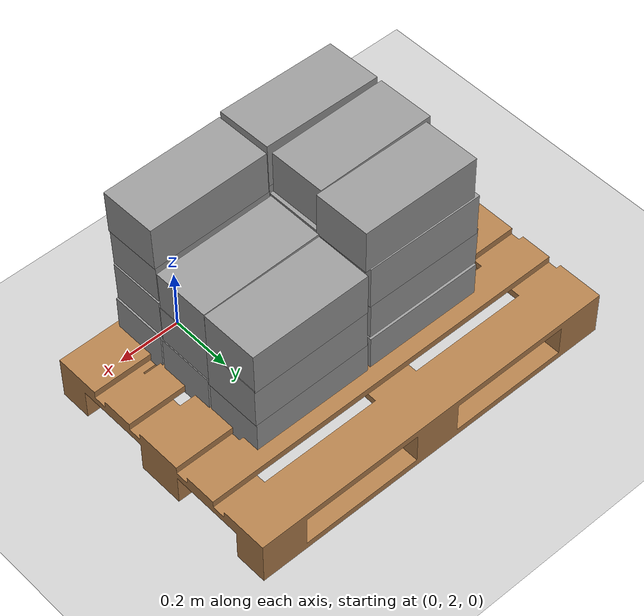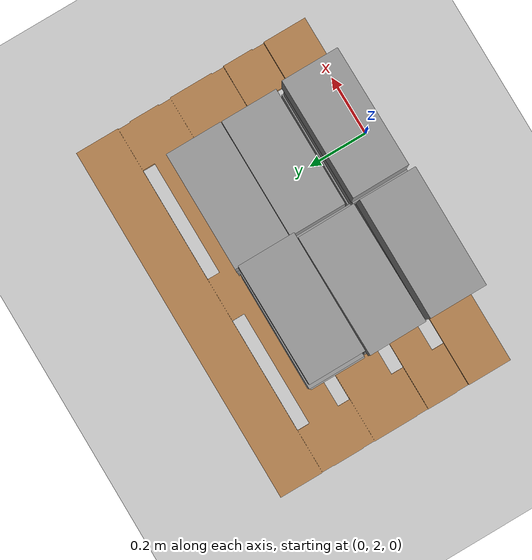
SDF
<sdf version="1.7">
 <world name="default">
  <light name="sun" type="directional">
   <pose>0 0 10 0 -0 0</pose>
   <diffuse>0.8 0.8 0.8 1</diffuse>
   <specular>0.2 0.2 0.2 1</specular>
   <attenuation>
    <range>1000</range>
    <constant>0.9</constant>
    <linear>0.01</linear>
    <quadratic>0.001</quadratic>
   </attenuation>
   <direction>-0.5 0.1 -0.9</direction>
   <spot><inner_angle>0</inner_angle><outer_angle>0</outer_angle><falloff>0</falloff></spot>
  </light>
  <model name="ground_plane">
   <static>1</static>
   <link name="link">
    <collision name="collision">
     <geometry><plane><normal>0 0 1</normal><size>100 100</size></plane></geometry>
     <surface>
      <contact><collide_bitmask>65535</collide_bitmask></contact>
      <friction><ode><mu>100</mu><mu2>50</mu2></ode></friction>
     </surface>
    </collision>
    <visual name="visual">
     <cast_shadows>0</cast_shadows>
     <geometry><plane><normal>0 0 1</normal><size>100 100</size></plane></geometry>
     <material>
      <script><uri>file://media/materials/scripts/gazebo.material</uri><name>Gazebo/Grey</name></script>
     </material>
    </visual>
   </link>
  </model>
  <gravity>0 0 -9.8</gravity>
  <magnetic_field>6e-06 2.3e-05 -4.2e-05</magnetic_field>
  <atmosphere type="adiabatic"/>
  <physics type="ode">
   <max_step_size>0.001</max_step_size>
   <real_time_factor>1</real_time_factor>
   <real_time_update_rate>1000</real_time_update_rate>
  </physics>
  <scene><ambient>0.4 0.4 0.4 1</ambient><background>0.7 0.7 0.7 1</background><shadows>1</shadows></scene>
  <spherical_coordinates>
   <surface_model>EARTH_WGS84</surface_model>
   <latitude_deg>0</latitude_deg>
   <longitude_deg>0</longitude_deg>
   <elevation>0</elevation>
   <heading_deg>0</heading_deg>
  </spherical_coordinates>
  <model name="box_38_18_14">
   <link name="link_0">
    <inertial>
     <mass>2.5</mass>
     <inertia>
      <ixx>0.0108332</ixx>
      <ixy>0</ixy>
      <ixz>0</ixz>
      <iyy>0.0341665</iyy>
      <iyz>0</iyz>
      <izz>0.0368332</izz>
     </inertia>
    </inertial>
    <visual name="visual">
     <geometry><box><size>0.38 0.18 0.14</size></box></geometry>
     <material>
      <lighting>1</lighting>
      <script><uri>file://media/materials/scripts/gazebo.material</uri><name>Gazebo/Grey</name></script>
      <shader type="pixel"><normal_map>__default__</normal_map></shader>
      <ambient>0.3 0.3 0.3 1</ambient>
      <diffuse>0.7 0.7 0.7 1</diffuse>
      <specular>0.01 0.01 0.01 1</specular>
      <emissive>0 0 0 1</emissive>
     </material>
    </visual>
    <collision name="collision">
     <geometry><box><size>0.38 0.18 0.14</size></box></geometry>
     <surface>
      <friction>
       <ode><mu>1</mu><mu2>1</mu2><fdir1>0 0 0</fdir1><slip1>0</slip1><slip2>0</slip2></ode>
       <torsional>
        <coefficient>1</coefficient>
        <patch_radius>0</patch_radius>
        <surface_radius>0</surface_radius>
        <use_patch_radius>1</use_patch_radius>
        <ode><slip>0</slip></ode>
       </torsional>
      </friction>
      <bounce><restitution_coefficient>0</restitution_coefficient><threshold>1e+06</threshold></bounce>
      <contact>
       <collide_without_contact>0</collide_without_contact>
       <collide_without_contact_bitmask>1</collide_without_contact_bitmask>
       <collide_bitmask>1</collide_bitmask>
       <ode>
        <soft_cfm>0</soft_cfm>
        <soft_erp>0.2</soft_erp>
        <kp>1e+13</kp>
        <kd>1</kd>
        <max_vel>0.01</max_vel>
        <min_depth>0.01</min_depth>
       </ode>
       <bullet>
        <split_impulse>1</split_impulse>
        <split_impulse_penetration_threshold>-0.01</split_impulse_penetration_threshold>
        <soft_cfm>0</soft_cfm>
        <soft_erp>0.2</soft_erp>
        <kp>1e+13</kp>
        <kd>1</kd>
       </bullet>
      </contact>
     </surface>
    </collision>
   </link>
   <static>0</static>
   <pose>0.003397 2.09051 0.59521 0.015717 0.010498 0.005636</pose>
  </model>
  <model name="box_38_18_14_3">
   <link name="link_0">
    <inertial>
     <mass>2.5</mass>
     <inertia>
      <ixx>0.0108332</ixx>
      <ixy>0</ixy>
      <ixz>0</ixz>
      <iyy>0.0341665</iyy>
      <iyz>0</iyz>
      <izz>0.0368332</izz>
     </inertia>
    </inertial>
    <visual name="visual">
     <geometry><box><size>0.38 0.18 0.14</size></box></geometry>
     <material>
      <lighting>1</lighting>
      <script><uri>file://media/materials/scripts/gazebo.material</uri><name>Gazebo/Grey</name></script>
      <shader type="pixel"><normal_map>__default__</normal_map></shader>
      <ambient>0.3 0.3 0.3 1</ambient>
      <diffuse>0.7 0.7 0.7 1</diffuse>
      <specular>0.01 0.01 0.01 1</specular>
      <emissive>0 0 0 1</emissive>
     </material>
    </visual>
    <collision name="collision">
     <geometry><box><size>0.38 0.18 0.14</size></box></geometry>
     <surface>
      <friction>
       <ode><mu>1</mu><mu2>1</mu2><fdir1>0 0 0</fdir1><slip1>0</slip1><slip2>0</slip2></ode>
       <torsional>
        <coefficient>1</coefficient>
        <patch_radius>0</patch_radius>
        <surface_radius>0</surface_radius>
        <use_patch_radius>1</use_patch_radius>
        <ode><slip>0</slip></ode>
       </torsional>
      </friction>
      <bounce><restitution_coefficient>0</restitution_coefficient><threshold>1e+06</threshold></bounce>
      <contact>
       <collide_without_contact>0</collide_without_contact>
       <collide_without_contact_bitmask>1</collide_without_contact_bitmask>
       <collide_bitmask>1</collide_bitmask>
       <ode>
        <soft_cfm>0</soft_cfm>
        <soft_erp>0.2</soft_erp>
        <kp>1e+13</kp>
        <kd>1</kd>
        <max_vel>0.01</max_vel>
        <min_depth>0.01</min_depth>
       </ode>
       <bullet>
        <split_impulse>1</split_impulse>
        <split_impulse_penetration_threshold>-0.01</split_impulse_penetration_threshold>
        <soft_cfm>0</soft_cfm>
        <soft_erp>0.2</soft_erp>
        <kp>1e+13</kp>
        <kd>1</kd>
       </bullet>
      </contact>
     </surface>
    </collision>
   </link>
   <static>0</static>
   <pose>-0.38781 2.07855 0.598266 0.040284 -0.014367 -0.000359</pose>
  </model>
  <model name="box_38_18_14_6">
   <link name="link_0">
    <inertial>
     <mass>2.5</mass>
     <inertia>
      <ixx>0.0108332</ixx>
      <ixy>0</ixy>
      <ixz>0</ixz>
      <iyy>0.0341665</iyy>
      <iyz>0</iyz>
      <izz>0.0368332</izz>
     </inertia>
    </inertial>
    <visual name="visual">
     <geometry><box><size>0.38 0.18 0.14</size></box></geometry>
     <material>
      <lighting>1</lighting>
      <script><uri>file://media/materials/scripts/gazebo.material</uri><name>Gazebo/Grey</name></script>
      <shader type="pixel"><normal_map>__default__</normal_map></shader>
      <ambient>0.3 0.3 0.3 1</ambient>
      <diffuse>0.7 0.7 0.7 1</diffuse>
      <specular>0.01 0.01 0.01 1</specular>
      <emissive>0 0 0 1</emissive>
     </material>
    </visual>
    <collision name="collision">
     <geometry><box><size>0.38 0.18 0.14</size></box></geometry>
     <surface>
      <friction>
       <ode><mu>1</mu><mu2>1</mu2><fdir1>0 0 0</fdir1><slip1>0</slip1><slip2>0</slip2></ode>
       <torsional>
        <coefficient>1</coefficient>
        <patch_radius>0</patch_radius>
        <surface_radius>0</surface_radius>
        <use_patch_radius>1</use_patch_radius>
        <ode><slip>0</slip></ode>
       </torsional>
      </friction>
      <bounce><restitution_coefficient>0</restitution_coefficient><threshold>1e+06</threshold></bounce>
      <contact>
       <collide_without_contact>0</collide_without_contact>
       <collide_without_contact_bitmask>1</collide_without_contact_bitmask>
       <collide_bitmask>1</collide_bitmask>
       <ode>
        <soft_cfm>0</soft_cfm>
        <soft_erp>0.2</soft_erp>
        <kp>1e+13</kp>
        <kd>1</kd>
        <max_vel>0.01</max_vel>
        <min_depth>0.01</min_depth>
       </ode>
       <bullet>
        <split_impulse>1</split_impulse>
        <split_impulse_penetration_threshold>-0.01</split_impulse_penetration_threshold>
        <soft_cfm>0</soft_cfm>
        <soft_erp>0.2</soft_erp>
        <kp>1e+13</kp>
        <kd>1</kd>
       </bullet>
      </contact>
     </surface>
    </collision>
   </link>
   <static>0</static>
   <pose>-0.390414 2.27253 0.597238 0.009371 0.000718 0.010115</pose>
  </model>
  <model name="box_38_18_14_7">
   <link name="link_0">
    <inertial>
     <mass>2.5</mass>
     <inertia>
      <ixx>0.0108332</ixx>
      <ixy>0</ixy>
      <ixz>0</ixz>
      <iyy>0.0341665</iyy>
      <iyz>0</iyz>
      <izz>0.0368332</izz>
     </inertia>
    </inertial>
    <visual name="visual">
     <geometry><box><size>0.38 0.18 0.14</size></box></geometry>
     <material>
      <lighting>1</lighting>
      <script><uri>file://media/materials/scripts/gazebo.material</uri><name>Gazebo/Grey</name></script>
      <shader type="pixel"><normal_map>__default__</normal_map></shader>
      <ambient>0.3 0.3 0.3 1</ambient>
      <diffuse>0.7 0.7 0.7 1</diffuse>
      <specular>0.01 0.01 0.01 1</specular>
      <emissive>0 0 0 1</emissive>
     </material>
    </visual>
    <collision name="collision">
     <geometry><box><size>0.38 0.18 0.14</size></box></geometry>
     <surface>
      <friction>
       <ode><mu>1</mu><mu2>1</mu2><fdir1>0 0 0</fdir1><slip1>0</slip1><slip2>0</slip2></ode>
       <torsional>
        <coefficient>1</coefficient>
        <patch_radius>0</patch_radius>
        <surface_radius>0</surface_radius>
        <use_patch_radius>1</use_patch_radius>
        <ode><slip>0</slip></ode>
       </torsional>
      </friction>
      <bounce><restitution_coefficient>0</restitution_coefficient><threshold>1e+06</threshold></bounce>
      <contact>
       <collide_without_contact>0</collide_without_contact>
       <collide_without_contact_bitmask>1</collide_without_contact_bitmask>
       <collide_bitmask>1</collide_bitmask>
       <ode>
        <soft_cfm>0</soft_cfm>
        <soft_erp>0.2</soft_erp>
        <kp>1e+13</kp>
        <kd>1</kd>
        <max_vel>0.01</max_vel>
        <min_depth>0.01</min_depth>
       </ode>
       <bullet>
        <split_impulse>1</split_impulse>
        <split_impulse_penetration_threshold>-0.01</split_impulse_penetration_threshold>
        <soft_cfm>0</soft_cfm>
        <soft_erp>0.2</soft_erp>
        <kp>1e+13</kp>
        <kd>1</kd>
       </bullet>
      </contact>
     </surface>
    </collision>
   </link>
   <static>0</static>
   <pose>-0.373115 2.45607 0.596671 0.013444 -0.012619 0.00408</pose>
  </model>
  <model name="box_38_18_14_8">
   <link name="link_0">
    <inertial>
     <mass>2.5</mass>
     <inertia>
      <ixx>0.0108332</ixx>
      <ixy>0</ixy>
      <ixz>0</ixz>
      <iyy>0.0341665</iyy>
      <iyz>0</iyz>
      <izz>0.0368332</izz>
     </inertia>
    </inertial>
    <visual name="visual">
     <geometry><box><size>0.38 0.18 0.14</size></box></geometry>
     <material>
      <lighting>1</lighting>
      <script><uri>file://media/materials/scripts/gazebo.material</uri><name>Gazebo/Grey</name></script>
      <shader type="pixel"><normal_map>__default__</normal_map></shader>
      <ambient>0.3 0.3 0.3 1</ambient>
      <diffuse>0.7 0.7 0.7 1</diffuse>
      <specular>0.01 0.01 0.01 1</specular>
      <emissive>0 0 0 1</emissive>
     </material>
    </visual>
    <collision name="collision">
     <geometry><box><size>0.38 0.18 0.14</size></box></geometry>
     <surface>
      <friction>
       <ode><mu>1</mu><mu2>1</mu2><fdir1>0 0 0</fdir1><slip1>0</slip1><slip2>0</slip2></ode>
       <torsional>
        <coefficient>1</coefficient>
        <patch_radius>0</patch_radius>
        <surface_radius>0</surface_radius>
        <use_patch_radius>1</use_patch_radius>
        <ode><slip>0</slip></ode>
       </torsional>
      </friction>
      <bounce><restitution_coefficient>0</restitution_coefficient><threshold>1e+06</threshold></bounce>
      <contact>
       <collide_without_contact>0</collide_without_contact>
       <collide_without_contact_bitmask>1</collide_without_contact_bitmask>
       <collide_bitmask>1</collide_bitmask>
       <ode>
        <soft_cfm>0</soft_cfm>
        <soft_erp>0.2</soft_erp>
        <kp>1e+13</kp>
        <kd>1</kd>
        <max_vel>0.01</max_vel>
        <min_depth>0.01</min_depth>
       </ode>
       <bullet>
        <split_impulse>1</split_impulse>
        <split_impulse_penetration_threshold>-0.01</split_impulse_penetration_threshold>
        <soft_cfm>0</soft_cfm>
        <soft_erp>0.2</soft_erp>
        <kp>1e+13</kp>
        <kd>1</kd>
       </bullet>
      </contact>
     </surface>
    </collision>
   </link>
   <static>0</static>
   <pose>-0.385222 2.08439 0.458942 0.043107 -0.014163 -3.1e-05</pose>
  </model>
  <model name="box_38_18_14_9">
   <link name="link_0">
    <inertial>
     <mass>2.5</mass>
     <inertia>
      <ixx>0.0108332</ixx>
      <ixy>0</ixy>
      <ixz>0</ixz>
      <iyy>0.0341665</iyy>
      <iyz>0</iyz>
      <izz>0.0368332</izz>
     </inertia>
    </inertial>
    <visual name="visual">
     <geometry><box><size>0.38 0.18 0.14</size></box></geometry>
     <material>
      <lighting>1</lighting>
      <script><uri>file://media/materials/scripts/gazebo.material</uri><name>Gazebo/Grey</name></script>
      <shader type="pixel"><normal_map>__default__</normal_map></shader>
      <ambient>0.3 0.3 0.3 1</ambient>
      <diffuse>0.7 0.7 0.7 1</diffuse>
      <specular>0.01 0.01 0.01 1</specular>
      <emissive>0 0 0 1</emissive>
     </material>
    </visual>
    <collision name="collision">
     <geometry><box><size>0.38 0.18 0.14</size></box></geometry>
     <surface>
      <friction>
       <ode><mu>1</mu><mu2>1</mu2><fdir1>0 0 0</fdir1><slip1>0</slip1><slip2>0</slip2></ode>
       <torsional>
        <coefficient>1</coefficient>
        <patch_radius>0</patch_radius>
        <surface_radius>0</surface_radius>
        <use_patch_radius>1</use_patch_radius>
        <ode><slip>0</slip></ode>
       </torsional>
      </friction>
      <bounce><restitution_coefficient>0</restitution_coefficient><threshold>1e+06</threshold></bounce>
      <contact>
       <collide_without_contact>0</collide_without_contact>
       <collide_without_contact_bitmask>1</collide_without_contact_bitmask>
       <collide_bitmask>1</collide_bitmask>
       <ode>
        <soft_cfm>0</soft_cfm>
        <soft_erp>0.2</soft_erp>
        <kp>1e+13</kp>
        <kd>1</kd>
        <max_vel>0.01</max_vel>
        <min_depth>0.01</min_depth>
       </ode>
       <bullet>
        <split_impulse>1</split_impulse>
        <split_impulse_penetration_threshold>-0.01</split_impulse_penetration_threshold>
        <soft_cfm>0</soft_cfm>
        <soft_erp>0.2</soft_erp>
        <kp>1e+13</kp>
        <kd>1</kd>
       </bullet>
      </contact>
     </surface>
    </collision>
   </link>
   <static>0</static>
   <pose>-0.384458 2.08962 0.327015 0.024244 -0.013403 -0.001181</pose>
  </model>
  <model name="box_38_18_14_10">
   <link name="link_0">
    <inertial>
     <mass>2.5</mass>
     <inertia>
      <ixx>0.0108332</ixx>
      <ixy>0</ixy>
      <ixz>0</ixz>
      <iyy>0.0341665</iyy>
      <iyz>0</iyz>
      <izz>0.0368332</izz>
     </inertia>
    </inertial>
    <visual name="visual">
     <geometry><box><size>0.38 0.18 0.14</size></box></geometry>
     <material>
      <lighting>1</lighting>
      <script><uri>file://media/materials/scripts/gazebo.material</uri><name>Gazebo/Grey</name></script>
      <shader type="pixel"><normal_map>__default__</normal_map></shader>
      <ambient>0.3 0.3 0.3 1</ambient>
      <diffuse>0.7 0.7 0.7 1</diffuse>
      <specular>0.01 0.01 0.01 1</specular>
      <emissive>0 0 0 1</emissive>
     </material>
    </visual>
    <collision name="collision">
     <geometry><box><size>0.38 0.18 0.14</size></box></geometry>
     <surface>
      <friction>
       <ode><mu>1</mu><mu2>1</mu2><fdir1>0 0 0</fdir1><slip1>0</slip1><slip2>0</slip2></ode>
       <torsional>
        <coefficient>1</coefficient>
        <patch_radius>0</patch_radius>
        <surface_radius>0</surface_radius>
        <use_patch_radius>1</use_patch_radius>
        <ode><slip>0</slip></ode>
       </torsional>
      </friction>
      <bounce><restitution_coefficient>0</restitution_coefficient><threshold>1e+06</threshold></bounce>
      <contact>
       <collide_without_contact>0</collide_without_contact>
       <collide_without_contact_bitmask>1</collide_without_contact_bitmask>
       <collide_bitmask>1</collide_bitmask>
       <ode>
        <soft_cfm>0</soft_cfm>
        <soft_erp>0.2</soft_erp>
        <kp>1e+13</kp>
        <kd>1</kd>
        <max_vel>0.01</max_vel>
        <min_depth>0.01</min_depth>
       </ode>
       <bullet>
        <split_impulse>1</split_impulse>
        <split_impulse_penetration_threshold>-0.01</split_impulse_penetration_threshold>
        <soft_cfm>0</soft_cfm>
        <soft_erp>0.2</soft_erp>
        <kp>1e+13</kp>
        <kd>1</kd>
       </bullet>
      </contact>
     </surface>
    </collision>
   </link>
   <static>0</static>
   <pose>-0.383954 2.09001 0.191987 -3.1e-05 4.7e-05 -0.001489</pose>
  </model>
  <model name="box_38_18_14_11">
   <link name="link_0">
    <inertial>
     <mass>2.5</mass>
     <inertia>
      <ixx>0.0108332</ixx>
      <ixy>0</ixy>
      <ixz>0</ixz>
      <iyy>0.0341665</iyy>
      <iyz>0</iyz>
      <izz>0.0368332</izz>
     </inertia>
    </inertial>
    <visual name="visual">
     <geometry><box><size>0.38 0.18 0.14</size></box></geometry>
     <material>
      <lighting>1</lighting>
      <script><uri>file://media/materials/scripts/gazebo.material</uri><name>Gazebo/Grey</name></script>
      <shader type="pixel"><normal_map>__default__</normal_map></shader>
      <ambient>0.3 0.3 0.3 1</ambient>
      <diffuse>0.7 0.7 0.7 1</diffuse>
      <specular>0.01 0.01 0.01 1</specular>
      <emissive>0 0 0 1</emissive>
     </material>
    </visual>
    <collision name="collision">
     <geometry><box><size>0.38 0.18 0.14</size></box></geometry>
     <surface>
      <friction>
       <ode><mu>1</mu><mu2>1</mu2><fdir1>0 0 0</fdir1><slip1>0</slip1><slip2>0</slip2></ode>
       <torsional>
        <coefficient>1</coefficient>
        <patch_radius>0</patch_radius>
        <surface_radius>0</surface_radius>
        <use_patch_radius>1</use_patch_radius>
        <ode><slip>0</slip></ode>
       </torsional>
      </friction>
      <bounce><restitution_coefficient>0</restitution_coefficient><threshold>1e+06</threshold></bounce>
      <contact>
       <collide_without_contact>0</collide_without_contact>
       <collide_without_contact_bitmask>1</collide_without_contact_bitmask>
       <collide_bitmask>1</collide_bitmask>
       <ode>
        <soft_cfm>0</soft_cfm>
        <soft_erp>0.2</soft_erp>
        <kp>1e+13</kp>
        <kd>1</kd>
        <max_vel>0.01</max_vel>
        <min_depth>0.01</min_depth>
       </ode>
       <bullet>
        <split_impulse>1</split_impulse>
        <split_impulse_penetration_threshold>-0.01</split_impulse_penetration_threshold>
        <soft_cfm>0</soft_cfm>
        <soft_erp>0.2</soft_erp>
        <kp>1e+13</kp>
        <kd>1</kd>
       </bullet>
      </contact>
     </surface>
    </collision>
   </link>
   <static>0</static>
   <pose>-0.378293 2.27419 0.457938 0.004756 0.000177 0.003232</pose>
  </model>
  <model name="box_38_18_14_12">
   <link name="link_0">
    <inertial>
     <mass>2.5</mass>
     <inertia>
      <ixx>0.0108332</ixx>
      <ixy>0</ixy>
      <ixz>0</ixz>
      <iyy>0.0341665</iyy>
      <iyz>0</iyz>
      <izz>0.0368332</izz>
     </inertia>
    </inertial>
    <visual name="visual">
     <geometry><box><size>0.38 0.18 0.14</size></box></geometry>
     <material>
      <lighting>1</lighting>
      <script><uri>file://media/materials/scripts/gazebo.material</uri><name>Gazebo/Grey</name></script>
      <shader type="pixel"><normal_map>__default__</normal_map></shader>
      <ambient>0.3 0.3 0.3 1</ambient>
      <diffuse>0.7 0.7 0.7 1</diffuse>
      <specular>0.01 0.01 0.01 1</specular>
      <emissive>0 0 0 1</emissive>
     </material>
    </visual>
    <collision name="collision">
     <geometry><box><size>0.38 0.18 0.14</size></box></geometry>
     <surface>
      <friction>
       <ode><mu>1</mu><mu2>1</mu2><fdir1>0 0 0</fdir1><slip1>0</slip1><slip2>0</slip2></ode>
       <torsional>
        <coefficient>1</coefficient>
        <patch_radius>0</patch_radius>
        <surface_radius>0</surface_radius>
        <use_patch_radius>1</use_patch_radius>
        <ode><slip>0</slip></ode>
       </torsional>
      </friction>
      <bounce><restitution_coefficient>0</restitution_coefficient><threshold>1e+06</threshold></bounce>
      <contact>
       <collide_without_contact>0</collide_without_contact>
       <collide_without_contact_bitmask>1</collide_without_contact_bitmask>
       <collide_bitmask>1</collide_bitmask>
       <ode>
        <soft_cfm>0</soft_cfm>
        <soft_erp>0.2</soft_erp>
        <kp>1e+13</kp>
        <kd>1</kd>
        <max_vel>0.01</max_vel>
        <min_depth>0.01</min_depth>
       </ode>
       <bullet>
        <split_impulse>1</split_impulse>
        <split_impulse_penetration_threshold>-0.01</split_impulse_penetration_threshold>
        <soft_cfm>0</soft_cfm>
        <soft_erp>0.2</soft_erp>
        <kp>1e+13</kp>
        <kd>1</kd>
       </bullet>
      </contact>
     </surface>
    </collision>
   </link>
   <static>0</static>
   <pose>-0.384684 2.27334 0.324929 -5.8e-05 0.013128 0.004437</pose>
  </model>
  <model name="box_38_18_14_13">
   <link name="link_0">
    <inertial>
     <mass>2.5</mass>
     <inertia>
      <ixx>0.0108332</ixx>
      <ixy>0</ixy>
      <ixz>0</ixz>
      <iyy>0.0341665</iyy>
      <iyz>0</iyz>
      <izz>0.0368332</izz>
     </inertia>
    </inertial>
    <visual name="visual">
     <geometry><box><size>0.38 0.18 0.14</size></box></geometry>
     <material>
      <lighting>1</lighting>
      <script><uri>file://media/materials/scripts/gazebo.material</uri><name>Gazebo/Grey</name></script>
      <shader type="pixel"><normal_map>__default__</normal_map></shader>
      <ambient>0.3 0.3 0.3 1</ambient>
      <diffuse>0.7 0.7 0.7 1</diffuse>
      <specular>0.01 0.01 0.01 1</specular>
      <emissive>0 0 0 1</emissive>
     </material>
    </visual>
    <collision name="collision">
     <geometry><box><size>0.38 0.18 0.14</size></box></geometry>
     <surface>
      <friction>
       <ode><mu>1</mu><mu2>1</mu2><fdir1>0 0 0</fdir1><slip1>0</slip1><slip2>0</slip2></ode>
       <torsional>
        <coefficient>1</coefficient>
        <patch_radius>0</patch_radius>
        <surface_radius>0</surface_radius>
        <use_patch_radius>1</use_patch_radius>
        <ode><slip>0</slip></ode>
       </torsional>
      </friction>
      <bounce><restitution_coefficient>0</restitution_coefficient><threshold>1e+06</threshold></bounce>
      <contact>
       <collide_without_contact>0</collide_without_contact>
       <collide_without_contact_bitmask>1</collide_without_contact_bitmask>
       <collide_bitmask>1</collide_bitmask>
       <ode>
        <soft_cfm>0</soft_cfm>
        <soft_erp>0.2</soft_erp>
        <kp>1e+13</kp>
        <kd>1</kd>
        <max_vel>0.01</max_vel>
        <min_depth>0.01</min_depth>
       </ode>
       <bullet>
        <split_impulse>1</split_impulse>
        <split_impulse_penetration_threshold>-0.01</split_impulse_penetration_threshold>
        <soft_cfm>0</soft_cfm>
        <soft_erp>0.2</soft_erp>
        <kp>1e+13</kp>
        <kd>1</kd>
       </bullet>
      </contact>
     </surface>
    </collision>
   </link>
   <static>0</static>
   <pose>-0.388235 2.27526 0.191987 2e-06 3e-05 -0.000238</pose>
  </model>
  <model name="box_38_18_14_14">
   <link name="link_0">
    <inertial>
     <mass>2.5</mass>
     <inertia>
      <ixx>0.0108332</ixx>
      <ixy>0</ixy>
      <ixz>0</ixz>
      <iyy>0.0341665</iyy>
      <iyz>0</iyz>
      <izz>0.0368332</izz>
     </inertia>
    </inertial>
    <visual name="visual">
     <geometry><box><size>0.38 0.18 0.14</size></box></geometry>
     <material>
      <lighting>1</lighting>
      <script><uri>file://media/materials/scripts/gazebo.material</uri><name>Gazebo/Grey</name></script>
      <shader type="pixel"><normal_map>__default__</normal_map></shader>
      <ambient>0.3 0.3 0.3 1</ambient>
      <diffuse>0.7 0.7 0.7 1</diffuse>
      <specular>0.01 0.01 0.01 1</specular>
      <emissive>0 0 0 1</emissive>
     </material>
    </visual>
    <collision name="collision">
     <geometry><box><size>0.38 0.18 0.14</size></box></geometry>
     <surface>
      <friction>
       <ode><mu>1</mu><mu2>1</mu2><fdir1>0 0 0</fdir1><slip1>0</slip1><slip2>0</slip2></ode>
       <torsional>
        <coefficient>1</coefficient>
        <patch_radius>0</patch_radius>
        <surface_radius>0</surface_radius>
        <use_patch_radius>1</use_patch_radius>
        <ode><slip>0</slip></ode>
       </torsional>
      </friction>
      <bounce><restitution_coefficient>0</restitution_coefficient><threshold>1e+06</threshold></bounce>
      <contact>
       <collide_without_contact>0</collide_without_contact>
       <collide_without_contact_bitmask>1</collide_without_contact_bitmask>
       <collide_bitmask>1</collide_bitmask>
       <ode>
        <soft_cfm>0</soft_cfm>
        <soft_erp>0.2</soft_erp>
        <kp>1e+13</kp>
        <kd>1</kd>
        <max_vel>0.01</max_vel>
        <min_depth>0.01</min_depth>
       </ode>
       <bullet>
        <split_impulse>1</split_impulse>
        <split_impulse_penetration_threshold>-0.01</split_impulse_penetration_threshold>
        <soft_cfm>0</soft_cfm>
        <soft_erp>0.2</soft_erp>
        <kp>1e+13</kp>
        <kd>1</kd>
       </bullet>
      </contact>
     </surface>
    </collision>
   </link>
   <static>0</static>
   <pose>-0.38622 2.46181 0.457523 0.011243 -0.015566 0.001099</pose>
  </model>
  <model name="box_38_18_14_15">
   <link name="link_0">
    <inertial>
     <mass>2.5</mass>
     <inertia>
      <ixx>0.0108332</ixx>
      <ixy>0</ixy>
      <ixz>0</ixz>
      <iyy>0.0341665</iyy>
      <iyz>0</iyz>
      <izz>0.0368332</izz>
     </inertia>
    </inertial>
    <visual name="visual">
     <geometry><box><size>0.38 0.18 0.14</size></box></geometry>
     <material>
      <lighting>1</lighting>
      <script><uri>file://media/materials/scripts/gazebo.material</uri><name>Gazebo/Grey</name></script>
      <shader type="pixel"><normal_map>__default__</normal_map></shader>
      <ambient>0.3 0.3 0.3 1</ambient>
      <diffuse>0.7 0.7 0.7 1</diffuse>
      <specular>0.01 0.01 0.01 1</specular>
      <emissive>0 0 0 1</emissive>
     </material>
    </visual>
    <collision name="collision">
     <geometry><box><size>0.38 0.18 0.14</size></box></geometry>
     <surface>
      <friction>
       <ode><mu>1</mu><mu2>1</mu2><fdir1>0 0 0</fdir1><slip1>0</slip1><slip2>0</slip2></ode>
       <torsional>
        <coefficient>1</coefficient>
        <patch_radius>0</patch_radius>
        <surface_radius>0</surface_radius>
        <use_patch_radius>1</use_patch_radius>
        <ode><slip>0</slip></ode>
       </torsional>
      </friction>
      <bounce><restitution_coefficient>0</restitution_coefficient><threshold>1e+06</threshold></bounce>
      <contact>
       <collide_without_contact>0</collide_without_contact>
       <collide_without_contact_bitmask>1</collide_without_contact_bitmask>
       <collide_bitmask>1</collide_bitmask>
       <ode>
        <soft_cfm>0</soft_cfm>
        <soft_erp>0.2</soft_erp>
        <kp>1e+13</kp>
        <kd>1</kd>
        <max_vel>0.01</max_vel>
        <min_depth>0.01</min_depth>
       </ode>
       <bullet>
        <split_impulse>1</split_impulse>
        <split_impulse_penetration_threshold>-0.01</split_impulse_penetration_threshold>
        <soft_cfm>0</soft_cfm>
        <soft_erp>0.2</soft_erp>
        <kp>1e+13</kp>
        <kd>1</kd>
       </bullet>
      </contact>
     </surface>
    </collision>
   </link>
   <static>0</static>
   <pose>-0.393031 2.45744 0.324685 0.000111 -0.012172 0.000107</pose>
  </model>
  <model name="box_38_18_14_16">
   <link name="link_0">
    <inertial>
     <mass>2.5</mass>
     <inertia>
      <ixx>0.0108332</ixx>
      <ixy>0</ixy>
      <ixz>0</ixz>
      <iyy>0.0341665</iyy>
      <iyz>0</iyz>
      <izz>0.0368332</izz>
     </inertia>
    </inertial>
    <visual name="visual">
     <geometry><box><size>0.38 0.18 0.14</size></box></geometry>
     <material>
      <lighting>1</lighting>
      <script><uri>file://media/materials/scripts/gazebo.material</uri><name>Gazebo/Grey</name></script>
      <shader type="pixel"><normal_map>__default__</normal_map></shader>
      <ambient>0.3 0.3 0.3 1</ambient>
      <diffuse>0.7 0.7 0.7 1</diffuse>
      <specular>0.01 0.01 0.01 1</specular>
      <emissive>0 0 0 1</emissive>
     </material>
    </visual>
    <collision name="collision">
     <geometry><box><size>0.38 0.18 0.14</size></box></geometry>
     <surface>
      <friction>
       <ode><mu>1</mu><mu2>1</mu2><fdir1>0 0 0</fdir1><slip1>0</slip1><slip2>0</slip2></ode>
       <torsional>
        <coefficient>1</coefficient>
        <patch_radius>0</patch_radius>
        <surface_radius>0</surface_radius>
        <use_patch_radius>1</use_patch_radius>
        <ode><slip>0</slip></ode>
       </torsional>
      </friction>
      <bounce><restitution_coefficient>0</restitution_coefficient><threshold>1e+06</threshold></bounce>
      <contact>
       <collide_without_contact>0</collide_without_contact>
       <collide_without_contact_bitmask>1</collide_without_contact_bitmask>
       <collide_bitmask>1</collide_bitmask>
       <ode>
        <soft_cfm>0</soft_cfm>
        <soft_erp>0.2</soft_erp>
        <kp>1e+13</kp>
        <kd>1</kd>
        <max_vel>0.01</max_vel>
        <min_depth>0.01</min_depth>
       </ode>
       <bullet>
        <split_impulse>1</split_impulse>
        <split_impulse_penetration_threshold>-0.01</split_impulse_penetration_threshold>
        <soft_cfm>0</soft_cfm>
        <soft_erp>0.2</soft_erp>
        <kp>1e+13</kp>
        <kd>1</kd>
       </bullet>
      </contact>
     </surface>
    </collision>
   </link>
   <static>0</static>
   <pose>-0.388319 2.4646 0.191992 2e-06 2.1e-05 -0.001019</pose>
  </model>
  <model name="box_38_18_14_0">
   <link name="link_0">
    <inertial>
     <mass>2.5</mass>
     <inertia>
      <ixx>0.0108332</ixx>
      <ixy>0</ixy>
      <ixz>0</ixz>
      <iyy>0.0341665</iyy>
      <iyz>0</iyz>
      <izz>0.0368332</izz>
     </inertia>
    </inertial>
    <visual name="visual">
     <geometry><box><size>0.38 0.18 0.14</size></box></geometry>
     <material>
      <lighting>1</lighting>
      <script><uri>file://media/materials/scripts/gazebo.material</uri><name>Gazebo/Grey</name></script>
      <shader type="pixel"><normal_map>__default__</normal_map></shader>
      <ambient>0.3 0.3 0.3 1</ambient>
      <diffuse>0.7 0.7 0.7 1</diffuse>
      <specular>0.01 0.01 0.01 1</specular>
      <emissive>0 0 0 1</emissive>
     </material>
    </visual>
    <collision name="collision">
     <geometry><box><size>0.38 0.18 0.14</size></box></geometry>
     <surface>
      <friction>
       <ode><mu>1</mu><mu2>1</mu2><fdir1>0 0 0</fdir1><slip1>0</slip1><slip2>0</slip2></ode>
       <torsional>
        <coefficient>1</coefficient>
        <patch_radius>0</patch_radius>
        <surface_radius>0</surface_radius>
        <use_patch_radius>1</use_patch_radius>
        <ode><slip>0</slip></ode>
       </torsional>
      </friction>
      <bounce><restitution_coefficient>0</restitution_coefficient><threshold>1e+06</threshold></bounce>
      <contact>
       <collide_without_contact>0</collide_without_contact>
       <collide_without_contact_bitmask>1</collide_without_contact_bitmask>
       <collide_bitmask>1</collide_bitmask>
       <ode>
        <soft_cfm>0</soft_cfm>
        <soft_erp>0.2</soft_erp>
        <kp>1e+13</kp>
        <kd>1</kd>
        <max_vel>0.01</max_vel>
        <min_depth>0.01</min_depth>
       </ode>
       <bullet>
        <split_impulse>1</split_impulse>
        <split_impulse_penetration_threshold>-0.01</split_impulse_penetration_threshold>
        <soft_cfm>0</soft_cfm>
        <soft_erp>0.2</soft_erp>
        <kp>1e+13</kp>
        <kd>1</kd>
       </bullet>
      </contact>
     </surface>
    </collision>
   </link>
   <static>0</static>
   <pose>0.008015 2.46853 0.454832 0.001741 0.00824 0.001916</pose>
  </model>
  <model name="box_38_18_14_1">
   <link name="link_0">
    <inertial>
     <mass>2.5</mass>
     <inertia>
      <ixx>0.0108332</ixx>
      <ixy>0</ixy>
      <ixz>0</ixz>
      <iyy>0.0341665</iyy>
      <iyz>0</iyz>
      <izz>0.0368332</izz>
     </inertia>
    </inertial>
    <visual name="visual">
     <geometry><box><size>0.38 0.18 0.14</size></box></geometry>
     <material>
      <lighting>1</lighting>
      <script><uri>file://media/materials/scripts/gazebo.material</uri><name>Gazebo/Grey</name></script>
      <shader type="pixel"><normal_map>__default__</normal_map></shader>
      <ambient>0.3 0.3 0.3 1</ambient>
      <diffuse>0.7 0.7 0.7 1</diffuse>
      <specular>0.01 0.01 0.01 1</specular>
      <emissive>0 0 0 1</emissive>
     </material>
    </visual>
    <collision name="collision">
     <geometry><box><size>0.38 0.18 0.14</size></box></geometry>
     <surface>
      <friction>
       <ode><mu>1</mu><mu2>1</mu2><fdir1>0 0 0</fdir1><slip1>0</slip1><slip2>0</slip2></ode>
       <torsional>
        <coefficient>1</coefficient>
        <patch_radius>0</patch_radius>
        <surface_radius>0</surface_radius>
        <use_patch_radius>1</use_patch_radius>
        <ode><slip>0</slip></ode>
       </torsional>
      </friction>
      <bounce><restitution_coefficient>0</restitution_coefficient><threshold>1e+06</threshold></bounce>
      <contact>
       <collide_without_contact>0</collide_without_contact>
       <collide_without_contact_bitmask>1</collide_without_contact_bitmask>
       <collide_bitmask>1</collide_bitmask>
       <ode>
        <soft_cfm>0</soft_cfm>
        <soft_erp>0.2</soft_erp>
        <kp>1e+13</kp>
        <kd>1</kd>
        <max_vel>0.01</max_vel>
        <min_depth>0.01</min_depth>
       </ode>
       <bullet>
        <split_impulse>1</split_impulse>
        <split_impulse_penetration_threshold>-0.01</split_impulse_penetration_threshold>
        <soft_cfm>0</soft_cfm>
        <soft_erp>0.2</soft_erp>
        <kp>1e+13</kp>
        <kd>1</kd>
       </bullet>
      </contact>
     </surface>
    </collision>
   </link>
   <static>0</static>
   <pose>0.008183 2.46822 0.32375 0.002192 0.008348 0.001119</pose>
  </model>
  <model name="box_38_18_14_2">
   <link name="link_0">
    <inertial>
     <mass>2.5</mass>
     <inertia>
      <ixx>0.0108332</ixx>
      <ixy>0</ixy>
      <ixz>0</ixz>
      <iyy>0.0341665</iyy>
      <iyz>0</iyz>
      <izz>0.0368332</izz>
     </inertia>
    </inertial>
    <visual name="visual">
     <geometry><box><size>0.38 0.18 0.14</size></box></geometry>
     <material>
      <lighting>1</lighting>
      <script><uri>file://media/materials/scripts/gazebo.material</uri><name>Gazebo/Grey</name></script>
      <shader type="pixel"><normal_map>__default__</normal_map></shader>
      <ambient>0.3 0.3 0.3 1</ambient>
      <diffuse>0.7 0.7 0.7 1</diffuse>
      <specular>0.01 0.01 0.01 1</specular>
      <emissive>0 0 0 1</emissive>
     </material>
    </visual>
    <collision name="collision">
     <geometry><box><size>0.38 0.18 0.14</size></box></geometry>
     <surface>
      <friction>
       <ode><mu>1</mu><mu2>1</mu2><fdir1>0 0 0</fdir1><slip1>0</slip1><slip2>0</slip2></ode>
       <torsional>
        <coefficient>1</coefficient>
        <patch_radius>0</patch_radius>
        <surface_radius>0</surface_radius>
        <use_patch_radius>1</use_patch_radius>
        <ode><slip>0</slip></ode>
       </torsional>
      </friction>
      <bounce><restitution_coefficient>0</restitution_coefficient><threshold>1e+06</threshold></bounce>
      <contact>
       <collide_without_contact>0</collide_without_contact>
       <collide_without_contact_bitmask>1</collide_without_contact_bitmask>
       <collide_bitmask>1</collide_bitmask>
       <ode>
        <soft_cfm>0</soft_cfm>
        <soft_erp>0.2</soft_erp>
        <kp>1e+13</kp>
        <kd>1</kd>
        <max_vel>0.01</max_vel>
        <min_depth>0.01</min_depth>
       </ode>
       <bullet>
        <split_impulse>1</split_impulse>
        <split_impulse_penetration_threshold>-0.01</split_impulse_penetration_threshold>
        <soft_cfm>0</soft_cfm>
        <soft_erp>0.2</soft_erp>
        <kp>1e+13</kp>
        <kd>1</kd>
       </bullet>
      </contact>
     </surface>
    </collision>
   </link>
   <static>0</static>
   <pose>0.00459 2.46779 0.191996 -4.2e-05 2.1e-05 0.000266</pose>
  </model>
  <model name="box_38_18_14_17">
   <link name="link_0">
    <inertial>
     <mass>2.5</mass>
     <inertia>
      <ixx>0.0108332</ixx>
      <ixy>0</ixy>
      <ixz>0</ixz>
      <iyy>0.0341665</iyy>
      <iyz>0</iyz>
      <izz>0.0368332</izz>
     </inertia>
    </inertial>
    <visual name="visual">
     <geometry><box><size>0.38 0.18 0.14</size></box></geometry>
     <material>
      <lighting>1</lighting>
      <script><uri>file://media/materials/scripts/gazebo.material</uri><name>Gazebo/Grey</name></script>
      <shader type="pixel"><normal_map>__default__</normal_map></shader>
      <ambient>0.3 0.3 0.3 1</ambient>
      <diffuse>0.7 0.7 0.7 1</diffuse>
      <specular>0.01 0.01 0.01 1</specular>
      <emissive>0 0 0 1</emissive>
     </material>
    </visual>
    <collision name="collision">
     <geometry><box><size>0.38 0.18 0.14</size></box></geometry>
     <surface>
      <friction>
       <ode><mu>1</mu><mu2>1</mu2><fdir1>0 0 0</fdir1><slip1>0</slip1><slip2>0</slip2></ode>
       <torsional>
        <coefficient>1</coefficient>
        <patch_radius>0</patch_radius>
        <surface_radius>0</surface_radius>
        <use_patch_radius>1</use_patch_radius>
        <ode><slip>0</slip></ode>
       </torsional>
      </friction>
      <bounce><restitution_coefficient>0</restitution_coefficient><threshold>1e+06</threshold></bounce>
      <contact>
       <collide_without_contact>0</collide_without_contact>
       <collide_without_contact_bitmask>1</collide_without_contact_bitmask>
       <collide_bitmask>1</collide_bitmask>
       <ode>
        <soft_cfm>0</soft_cfm>
        <soft_erp>0.2</soft_erp>
        <kp>1e+13</kp>
        <kd>1</kd>
        <max_vel>0.01</max_vel>
        <min_depth>0.01</min_depth>
       </ode>
       <bullet>
        <split_impulse>1</split_impulse>
        <split_impulse_penetration_threshold>-0.01</split_impulse_penetration_threshold>
        <soft_cfm>0</soft_cfm>
        <soft_erp>0.2</soft_erp>
        <kp>1e+13</kp>
        <kd>1</kd>
       </bullet>
      </contact>
     </surface>
    </collision>
   </link>
   <static>0</static>
   <pose>0.006758 2.28665 0.457909 -6.9e-05 0.022985 0.001042</pose>
  </model>
  <model name="box_38_18_14_18">
   <link name="link_0">
    <inertial>
     <mass>2.5</mass>
     <inertia>
      <ixx>0.0108332</ixx>
      <ixy>0</ixy>
      <ixz>0</ixz>
      <iyy>0.0341665</iyy>
      <iyz>0</iyz>
      <izz>0.0368332</izz>
     </inertia>
    </inertial>
    <visual name="visual">
     <geometry><box><size>0.38 0.18 0.14</size></box></geometry>
     <material>
      <lighting>1</lighting>
      <script><uri>file://media/materials/scripts/gazebo.material</uri><name>Gazebo/Grey</name></script>
      <shader type="pixel"><normal_map>__default__</normal_map></shader>
      <ambient>0.3 0.3 0.3 1</ambient>
      <diffuse>0.7 0.7 0.7 1</diffuse>
      <specular>0.01 0.01 0.01 1</specular>
      <emissive>0 0 0 1</emissive>
     </material>
    </visual>
    <collision name="collision">
     <geometry><box><size>0.38 0.18 0.14</size></box></geometry>
     <surface>
      <friction>
       <ode><mu>1</mu><mu2>1</mu2><fdir1>0 0 0</fdir1><slip1>0</slip1><slip2>0</slip2></ode>
       <torsional>
        <coefficient>1</coefficient>
        <patch_radius>0</patch_radius>
        <surface_radius>0</surface_radius>
        <use_patch_radius>1</use_patch_radius>
        <ode><slip>0</slip></ode>
       </torsional>
      </friction>
      <bounce><restitution_coefficient>0</restitution_coefficient><threshold>1e+06</threshold></bounce>
      <contact>
       <collide_without_contact>0</collide_without_contact>
       <collide_without_contact_bitmask>1</collide_without_contact_bitmask>
       <collide_bitmask>1</collide_bitmask>
       <ode>
        <soft_cfm>0</soft_cfm>
        <soft_erp>0.2</soft_erp>
        <kp>1e+13</kp>
        <kd>1</kd>
        <max_vel>0.01</max_vel>
        <min_depth>0.01</min_depth>
       </ode>
       <bullet>
        <split_impulse>1</split_impulse>
        <split_impulse_penetration_threshold>-0.01</split_impulse_penetration_threshold>
        <soft_cfm>0</soft_cfm>
        <soft_erp>0.2</soft_erp>
        <kp>1e+13</kp>
        <kd>1</kd>
       </bullet>
      </contact>
     </surface>
    </collision>
   </link>
   <static>0</static>
   <pose>0.005092 2.28444 0.325738 -0.002916 0.017463 0.000913</pose>
  </model>
  <model name="box_38_18_14_19">
   <link name="link_0">
    <inertial>
     <mass>2.5</mass>
     <inertia>
      <ixx>0.0108332</ixx>
      <ixy>0</ixy>
      <ixz>0</ixz>
      <iyy>0.0341665</iyy>
      <iyz>0</iyz>
      <izz>0.0368332</izz>
     </inertia>
    </inertial>
    <visual name="visual">
     <geometry><box><size>0.38 0.18 0.14</size></box></geometry>
     <material>
      <lighting>1</lighting>
      <script><uri>file://media/materials/scripts/gazebo.material</uri><name>Gazebo/Grey</name></script>
      <shader type="pixel"><normal_map>__default__</normal_map></shader>
      <ambient>0.3 0.3 0.3 1</ambient>
      <diffuse>0.7 0.7 0.7 1</diffuse>
      <specular>0.01 0.01 0.01 1</specular>
      <emissive>0 0 0 1</emissive>
     </material>
    </visual>
    <collision name="collision">
     <geometry><box><size>0.38 0.18 0.14</size></box></geometry>
     <surface>
      <friction>
       <ode><mu>1</mu><mu2>1</mu2><fdir1>0 0 0</fdir1><slip1>0</slip1><slip2>0</slip2></ode>
       <torsional>
        <coefficient>1</coefficient>
        <patch_radius>0</patch_radius>
        <surface_radius>0</surface_radius>
        <use_patch_radius>1</use_patch_radius>
        <ode><slip>0</slip></ode>
       </torsional>
      </friction>
      <bounce><restitution_coefficient>0</restitution_coefficient><threshold>1e+06</threshold></bounce>
      <contact>
       <collide_without_contact>0</collide_without_contact>
       <collide_without_contact_bitmask>1</collide_without_contact_bitmask>
       <collide_bitmask>1</collide_bitmask>
       <ode>
        <soft_cfm>0</soft_cfm>
        <soft_erp>0.2</soft_erp>
        <kp>1e+13</kp>
        <kd>1</kd>
        <max_vel>0.01</max_vel>
        <min_depth>0.01</min_depth>
       </ode>
       <bullet>
        <split_impulse>1</split_impulse>
        <split_impulse_penetration_threshold>-0.01</split_impulse_penetration_threshold>
        <soft_cfm>0</soft_cfm>
        <soft_erp>0.2</soft_erp>
        <kp>1e+13</kp>
        <kd>1</kd>
       </bullet>
      </contact>
     </surface>
    </collision>
   </link>
   <static>0</static>
   <pose>0.00677 2.28392 0.191986 6e-06 -1.3e-05 -0.000483</pose>
  </model>
  <model name="box_38_18_14_20">
   <link name="link_0">
    <inertial>
     <mass>2.5</mass>
     <inertia>
      <ixx>0.0108332</ixx>
      <ixy>0</ixy>
      <ixz>0</ixz>
      <iyy>0.0341665</iyy>
      <iyz>0</iyz>
      <izz>0.0368332</izz>
     </inertia>
    </inertial>
    <visual name="visual">
     <geometry><box><size>0.38 0.18 0.14</size></box></geometry>
     <material>
      <lighting>1</lighting>
      <script><uri>file://media/materials/scripts/gazebo.material</uri><name>Gazebo/Grey</name></script>
      <shader type="pixel"><normal_map>__default__</normal_map></shader>
      <ambient>0.3 0.3 0.3 1</ambient>
      <diffuse>0.7 0.7 0.7 1</diffuse>
      <specular>0.01 0.01 0.01 1</specular>
      <emissive>0 0 0 1</emissive>
     </material>
    </visual>
    <collision name="collision">
     <geometry><box><size>0.38 0.18 0.14</size></box></geometry>
     <surface>
      <friction>
       <ode><mu>1</mu><mu2>1</mu2><fdir1>0 0 0</fdir1><slip1>0</slip1><slip2>0</slip2></ode>
       <torsional>
        <coefficient>1</coefficient>
        <patch_radius>0</patch_radius>
        <surface_radius>0</surface_radius>
        <use_patch_radius>1</use_patch_radius>
        <ode><slip>0</slip></ode>
       </torsional>
      </friction>
      <bounce><restitution_coefficient>0</restitution_coefficient><threshold>1e+06</threshold></bounce>
      <contact>
       <collide_without_contact>0</collide_without_contact>
       <collide_without_contact_bitmask>1</collide_without_contact_bitmask>
       <collide_bitmask>1</collide_bitmask>
       <ode>
        <soft_cfm>0</soft_cfm>
        <soft_erp>0.2</soft_erp>
        <kp>1e+13</kp>
        <kd>1</kd>
        <max_vel>0.01</max_vel>
        <min_depth>0.01</min_depth>
       </ode>
       <bullet>
        <split_impulse>1</split_impulse>
        <split_impulse_penetration_threshold>-0.01</split_impulse_penetration_threshold>
        <soft_cfm>0</soft_cfm>
        <soft_erp>0.2</soft_erp>
        <kp>1e+13</kp>
        <kd>1</kd>
       </bullet>
      </contact>
     </surface>
    </collision>
   </link>
   <static>0</static>
   <pose>-0.003437 2.08902 0.455946 0.015672 0.010308 0.000518</pose>
  </model>
  <model name="box_38_18_14_21">
   <link name="link_0">
    <inertial>
     <mass>2.5</mass>
     <inertia>
      <ixx>0.0108332</ixx>
      <ixy>0</ixy>
      <ixz>0</ixz>
      <iyy>0.0341665</iyy>
      <iyz>0</iyz>
      <izz>0.0368332</izz>
     </inertia>
    </inertial>
    <visual name="visual">
     <geometry><box><size>0.38 0.18 0.14</size></box></geometry>
     <material>
      <lighting>1</lighting>
      <script><uri>file://media/materials/scripts/gazebo.material</uri><name>Gazebo/Grey</name></script>
      <shader type="pixel"><normal_map>__default__</normal_map></shader>
      <ambient>0.3 0.3 0.3 1</ambient>
      <diffuse>0.7 0.7 0.7 1</diffuse>
      <specular>0.01 0.01 0.01 1</specular>
      <emissive>0 0 0 1</emissive>
     </material>
    </visual>
    <collision name="collision">
     <geometry><box><size>0.38 0.18 0.14</size></box></geometry>
     <surface>
      <friction>
       <ode><mu>1</mu><mu2>1</mu2><fdir1>0 0 0</fdir1><slip1>0</slip1><slip2>0</slip2></ode>
       <torsional>
        <coefficient>1</coefficient>
        <patch_radius>0</patch_radius>
        <surface_radius>0</surface_radius>
        <use_patch_radius>1</use_patch_radius>
        <ode><slip>0</slip></ode>
       </torsional>
      </friction>
      <bounce><restitution_coefficient>0</restitution_coefficient><threshold>1e+06</threshold></bounce>
      <contact>
       <collide_without_contact>0</collide_without_contact>
       <collide_without_contact_bitmask>1</collide_without_contact_bitmask>
       <collide_bitmask>1</collide_bitmask>
       <ode>
        <soft_cfm>0</soft_cfm>
        <soft_erp>0.2</soft_erp>
        <kp>1e+13</kp>
        <kd>1</kd>
        <max_vel>0.01</max_vel>
        <min_depth>0.01</min_depth>
       </ode>
       <bullet>
        <split_impulse>1</split_impulse>
        <split_impulse_penetration_threshold>-0.01</split_impulse_penetration_threshold>
        <soft_cfm>0</soft_cfm>
        <soft_erp>0.2</soft_erp>
        <kp>1e+13</kp>
        <kd>1</kd>
       </bullet>
      </contact>
     </surface>
    </collision>
   </link>
   <static>0</static>
   <pose>-0.000397 2.09528 0.325415 0.01168 0.011316 -0.001573</pose>
  </model>
  <model name="box_38_18_14_22">
   <link name="link_0">
    <inertial>
     <mass>2.5</mass>
     <inertia>
      <ixx>0.0108332</ixx>
      <ixy>0</ixy>
      <ixz>0</ixz>
      <iyy>0.0341665</iyy>
      <iyz>0</iyz>
      <izz>0.0368332</izz>
     </inertia>
    </inertial>
    <visual name="visual">
     <geometry><box><size>0.38 0.18 0.14</size></box></geometry>
     <material>
      <lighting>1</lighting>
      <script><uri>file://media/materials/scripts/gazebo.material</uri><name>Gazebo/Grey</name></script>
      <shader type="pixel"><normal_map>__default__</normal_map></shader>
      <ambient>0.3 0.3 0.3 1</ambient>
      <diffuse>0.7 0.7 0.7 1</diffuse>
      <specular>0.01 0.01 0.01 1</specular>
      <emissive>0 0 0 1</emissive>
     </material>
    </visual>
    <collision name="collision">
     <geometry><box><size>0.38 0.18 0.14</size></box></geometry>
     <surface>
      <friction>
       <ode><mu>1</mu><mu2>1</mu2><fdir1>0 0 0</fdir1><slip1>0</slip1><slip2>0</slip2></ode>
       <torsional>
        <coefficient>1</coefficient>
        <patch_radius>0</patch_radius>
        <surface_radius>0</surface_radius>
        <use_patch_radius>1</use_patch_radius>
        <ode><slip>0</slip></ode>
       </torsional>
      </friction>
      <bounce><restitution_coefficient>0</restitution_coefficient><threshold>1e+06</threshold></bounce>
      <contact>
       <collide_without_contact>0</collide_without_contact>
       <collide_without_contact_bitmask>1</collide_without_contact_bitmask>
       <collide_bitmask>1</collide_bitmask>
       <ode>
        <soft_cfm>0</soft_cfm>
        <soft_erp>0.2</soft_erp>
        <kp>1e+13</kp>
        <kd>1</kd>
        <max_vel>0.01</max_vel>
        <min_depth>0.01</min_depth>
       </ode>
       <bullet>
        <split_impulse>1</split_impulse>
        <split_impulse_penetration_threshold>-0.01</split_impulse_penetration_threshold>
        <soft_cfm>0</soft_cfm>
        <soft_erp>0.2</soft_erp>
        <kp>1e+13</kp>
        <kd>1</kd>
       </bullet>
      </contact>
     </surface>
    </collision>
   </link>
   <static>0</static>
   <pose>0.00453 2.09486 0.191984 -1.5e-05 2.8e-05 -0.000824</pose>
  </model>
  <model name="pedana">
   <link name="base">
    <inertial>
     <mass>25</mass>
     <inertia><ixx>1.36434</ixx><ixy>0</ixy><ixz>0</ixz><iyy>3.03101</iyy><iyz>0</iyz><izz>4.33333</izz></inertia>
    </inertial>
    <self_collide>1</self_collide>
    <visual name="visual">
     <pose>-0.6 -0.4 -0.055 0 -0 0</pose>
     <geometry>
      <mesh><uri>/home/marco/catkin_ws_iliad/src/iliad/meshes/pallet_base.stl</uri><scale>1 1 1</scale></mesh>
     </geometry>
     <material>
      <lighting>1</lighting>
      <script><uri>file://media/materials/scripts/gazebo.material</uri><name>Gazebo/Wood</name></script>
      <shader type="pixel"><normal_map>__default__</normal_map></shader>
      <ambient>0.3 0.3 0.3 1</ambient>
      <diffuse>0.7 0.7 0.7 1</diffuse>
      <specular>0.01 0.01 0.01 1</specular>
      <emissive>0 0 0 1</emissive>
     </material>
    </visual>
    <collision name="collision">
     <geometry><box><size>1.2 0.8 0.122</size></box></geometry>
     <surface>
      <friction>
       <ode><mu>1</mu><mu2>1</mu2><fdir1>0 0 0</fdir1><slip1>0</slip1><slip2>0</slip2></ode>
       <torsional>
        <coefficient>1</coefficient>
        <patch_radius>0</patch_radius>
        <surface_radius>0</surface_radius>
        <use_patch_radius>1</use_patch_radius>
        <ode><slip>0</slip></ode>
       </torsional>
      </friction>
      <bounce><restitution_coefficient>0</restitution_coefficient><threshold>1e+06</threshold></bounce>
      <contact>
       <collide_without_contact>0</collide_without_contact>
       <collide_without_contact_bitmask>1</collide_without_contact_bitmask>
       <collide_bitmask>1</collide_bitmask>
       <ode>
        <soft_cfm>0</soft_cfm>
        <soft_erp>0.2</soft_erp>
        <kp>1e+13</kp>
        <kd>1</kd>
        <max_vel>0.01</max_vel>
        <min_depth>0</min_depth>
       </ode>
       <bullet>
        <split_impulse>1</split_impulse>
        <split_impulse_penetration_threshold>-0.01</split_impulse_penetration_threshold>
        <soft_cfm>0</soft_cfm>
        <soft_erp>0.2</soft_erp>
        <kp>1e+13</kp>
        <kd>1</kd>
       </bullet>
      </contact>
     </surface>
    </collision>
   </link>
   <static>0</static>
   <pose>-0.217297 2.38961 0.060985 3.8e-05 -0 9.4e-05</pose>
  </model>
 </world>
</sdf>
